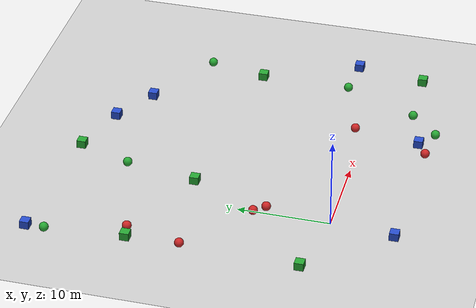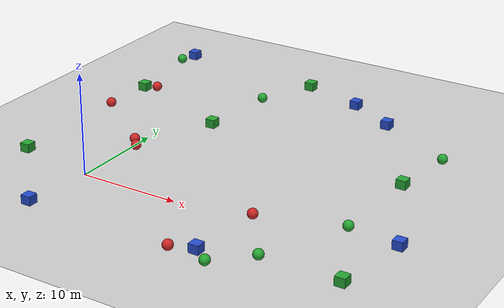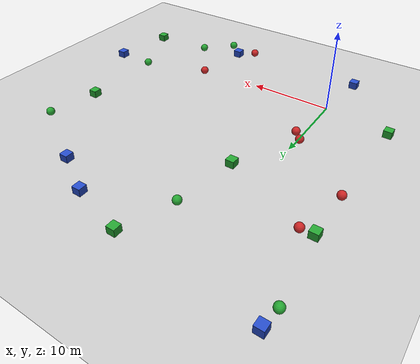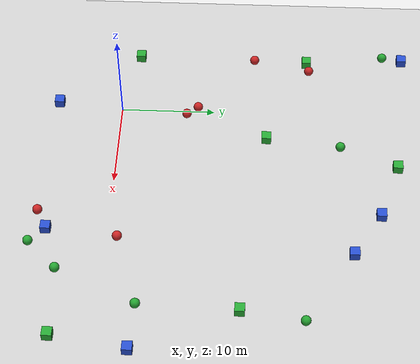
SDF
<sdf version="1.6">
 <world name="default">
  <light name="sun" type="directional">
   <pose>0 0 10 0 -0 0</pose>
   <diffuse>0.8 0.8 0.8 1</diffuse>
   <specular>0.1 0.1 0.1 1</specular>
   <attenuation>
    <range>1000</range>
    <constant>0.9</constant>
    <linear>0.01</linear>
    <quadratic>0.001</quadratic>
   </attenuation>
   <direction>-0.5 0.5 -1</direction>
  </light>
  <model name="ground_plane">
   <static>1</static>
   <link name="link">
    <collision name="collision">
     <geometry><plane><normal>0 0 1</normal><size>100 100</size></plane></geometry>
     <surface><friction><ode><mu>100</mu><mu2>50</mu2></ode></friction></surface>
    </collision>
    <visual name="visual">
     <cast_shadows>0</cast_shadows>
     <geometry><plane><normal>0 0 1</normal><size>100 100</size></plane></geometry>
     <material>
      <script><uri>file://media/materials/scripts/gazebo.material</uri><name>Gazebo/Grey</name></script>
     </material>
    </visual>
   </link>
  </model>
  <model name="unit_sphere_red_6">
   <pose>0.679006816392 7.06376724941 0.5 0 -0 0</pose>
   <link name="link">
    <inertial>
     <mass>1</mass>
     <inertia><ixx>0.1</ixx><ixy>0</ixy><ixz>0</ixz><iyy>0.1</iyy><iyz>0</iyz><izz>0.1</izz></inertia>
    </inertial>
    <collision name="collision"><geometry><sphere><radius>0.5</radius></sphere></geometry></collision>
    <visual name="visual">
     <geometry><sphere><radius>0.5</radius></sphere></geometry>
     <material>
      <script><name>Gazebo/Red</name><uri>file://media/materials/scripts/gazebo.material</uri></script>
     </material>
    </visual>
   </link>
  </model>
  <model name="unit_sphere_red_5">
   <pose>-0.342703010557 8.2347282803 0.5 0 -0 0</pose>
   <link name="link">
    <inertial>
     <mass>1</mass>
     <inertia><ixx>0.1</ixx><ixy>0</ixy><ixz>0</ixz><iyy>0.1</iyy><iyz>0</iyz><izz>0.1</izz></inertia>
    </inertial>
    <collision name="collision"><geometry><sphere><radius>0.5</radius></sphere></geometry></collision>
    <visual name="visual">
     <geometry><sphere><radius>0.5</radius></sphere></geometry>
     <material>
      <script><name>Gazebo/Red</name><uri>file://media/materials/scripts/gazebo.material</uri></script>
     </material>
    </visual>
   </link>
  </model>
  <model name="unit_sphere_red_4">
   <pose>17.5584294478 1.05749372229 0.5 0 -0 0</pose>
   <link name="link">
    <inertial>
     <mass>1</mass>
     <inertia><ixx>0.1</ixx><ixy>0</ixy><ixz>0</ixz><iyy>0.1</iyy><iyz>0</iyz><izz>0.1</izz></inertia>
    </inertial>
    <collision name="collision"><geometry><sphere><radius>0.5</radius></sphere></geometry></collision>
    <visual name="visual">
     <geometry><sphere><radius>0.5</radius></sphere></geometry>
     <material>
      <script><name>Gazebo/Red</name><uri>file://media/materials/scripts/gazebo.material</uri></script>
     </material>
    </visual>
   </link>
  </model>
  <model name="unit_sphere_red_3">
   <pose>14.5315029109 -7.34293304313 0.5 0 -0 0</pose>
   <link name="link">
    <inertial>
     <mass>1</mass>
     <inertia><ixx>0.1</ixx><ixy>0</ixy><ixz>0</ixz><iyy>0.1</iyy><iyz>0</iyz><izz>0.1</izz></inertia>
    </inertial>
    <collision name="collision"><geometry><sphere><radius>0.5</radius></sphere></geometry></collision>
    <visual name="visual">
     <geometry><sphere><radius>0.5</radius></sphere></geometry>
     <material>
      <script><name>Gazebo/Red</name><uri>file://media/materials/scripts/gazebo.material</uri></script>
     </material>
    </visual>
   </link>
  </model>
  <model name="unit_sphere_red_2">
   <pose>-6.26913152686 20.267223778 0.5 0 -0 0</pose>
   <link name="link">
    <inertial>
     <mass>1</mass>
     <inertia><ixx>0.1</ixx><ixy>0</ixy><ixz>0</ixz><iyy>0.1</iyy><iyz>0</iyz><izz>0.1</izz></inertia>
    </inertial>
    <collision name="collision"><geometry><sphere><radius>0.5</radius></sphere></geometry></collision>
    <visual name="visual">
     <geometry><sphere><radius>0.5</radius></sphere></geometry>
     <material>
      <script><name>Gazebo/Red</name><uri>file://media/materials/scripts/gazebo.material</uri></script>
     </material>
    </visual>
   </link>
  </model>
  <model name="unit_sphere_red_1">
   <pose>-7.76381281986 14.1980632517 0.5 0 -0 0</pose>
   <link name="link">
    <inertial>
     <mass>1</mass>
     <inertia><ixx>0.1</ixx><ixy>0</ixy><ixz>0</ixz><iyy>0.1</iyy><iyz>0</iyz><izz>0.1</izz></inertia>
    </inertial>
    <collision name="collision"><geometry><sphere><radius>0.5</radius></sphere></geometry></collision>
    <visual name="visual">
     <geometry><sphere><radius>0.5</radius></sphere></geometry>
     <material>
      <script><name>Gazebo/Red</name><uri>file://media/materials/scripts/gazebo.material</uri></script>
     </material>
    </visual>
   </link>
  </model>
  <model name="unit_box_green_6">
   <pose>7.32627079928 29.5790009614 0.329741 0 -0 0</pose>
   <link name="link">
    <inertial>
     <mass>1</mass>
     <inertia>
      <ixx>0.166667</ixx>
      <ixy>0</ixy>
      <ixz>0</ixz>
      <iyy>0.166667</iyy>
      <iyz>0</iyz>
      <izz>0.166667</izz>
     </inertia>
    </inertial>
    <collision name="collision"><geometry><box><size>1 1 0.999999</size></box></geometry></collision>
    <visual name="visual">
     <geometry><box><size>1 1 0.999999</size></box></geometry>
     <material>
      <script><name>Gazebo/Green</name><uri>file://media/materials/scripts/gazebo.material</uri></script>
     </material>
    </visual>
   </link>
  </model>
  <model name="unit_box_green_5">
   <pose>3.76036680904 15.7261155007 0.329741 0 -0 0</pose>
   <link name="link">
    <inertial>
     <mass>1</mass>
     <inertia>
      <ixx>0.166667</ixx>
      <ixy>0</ixy>
      <ixz>0</ixz>
      <iyy>0.166667</iyy>
      <iyz>0</iyz>
      <izz>0.166667</izz>
     </inertia>
    </inertial>
    <collision name="collision"><geometry><box><size>1 1 0.999999</size></box></geometry></collision>
    <visual name="visual">
     <geometry><box><size>1 1 0.999999</size></box></geometry>
     <material>
      <script><name>Gazebo/Green</name><uri>file://media/materials/scripts/gazebo.material</uri></script>
     </material>
    </visual>
   </link>
  </model>
  <model name="unit_box_green_4">
   <pose>25.8041870947 13.6004324751 0.329741 0 -0 0</pose>
   <link name="link">
    <inertial>
     <mass>1</mass>
     <inertia>
      <ixx>0.166667</ixx>
      <ixy>0</ixy>
      <ixz>0</ixz>
      <iyy>0.166667</iyy>
      <iyz>0</iyz>
      <izz>0.166667</izz>
     </inertia>
    </inertial>
    <collision name="collision"><geometry><box><size>1 1 0.999999</size></box></geometry></collision>
    <visual name="visual">
     <geometry><box><size>1 1 0.999999</size></box></geometry>
     <material>
      <script><name>Gazebo/Green</name><uri>file://media/materials/scripts/gazebo.material</uri></script>
     </material>
    </visual>
   </link>
  </model>
  <model name="unit_box_green_3">
   <pose>-8.06863257433 1.39302343865 0.329741 0 -0 0</pose>
   <link name="link">
    <inertial>
     <mass>1</mass>
     <inertia>
      <ixx>0.166667</ixx>
      <ixy>0</ixy>
      <ixz>0</ixz>
      <iyy>0.166667</iyy>
      <iyz>0</iyz>
      <izz>0.166667</izz>
     </inertia>
    </inertial>
    <collision name="collision"><geometry><box><size>1 1 0.999999</size></box></geometry></collision>
    <visual name="visual">
     <geometry><box><size>1 1 0.999999</size></box></geometry>
     <material>
      <script><name>Gazebo/Green</name><uri>file://media/materials/scripts/gazebo.material</uri></script>
     </material>
    </visual>
   </link>
  </model>
  <model name="unit_box_green_2">
   <pose>29.2125670267 -4.4049276741 0.329741 0 -0 0</pose>
   <link name="link">
    <inertial>
     <mass>1</mass>
     <inertia>
      <ixx>0.166667</ixx>
      <ixy>0</ixy>
      <ixz>0</ixz>
      <iyy>0.166667</iyy>
      <iyz>0</iyz>
      <izz>0.166667</izz>
     </inertia>
    </inertial>
    <collision name="collision"><geometry><box><size>1 1 0.999999</size></box></geometry></collision>
    <visual name="visual">
     <geometry><box><size>1 1 0.999999</size></box></geometry>
     <material>
      <script><name>Gazebo/Green</name><uri>file://media/materials/scripts/gazebo.material</uri></script>
     </material>
    </visual>
   </link>
  </model>
  <model name="unit_box_green_1">
   <pose>-7.70741868098 20.0073146435 0.329741 0 -0 0</pose>
   <link name="link">
    <inertial>
     <mass>1</mass>
     <inertia>
      <ixx>0.166667</ixx>
      <ixy>0</ixy>
      <ixz>0</ixz>
      <iyy>0.166667</iyy>
      <iyz>0</iyz>
      <izz>0.166667</izz>
     </inertia>
    </inertial>
    <collision name="collision"><geometry><box><size>1 1 0.999999</size></box></geometry></collision>
    <visual name="visual">
     <geometry><box><size>1 1 0.999999</size></box></geometry>
     <material>
      <script><name>Gazebo/Green</name><uri>file://media/materials/scripts/gazebo.material</uri></script>
     </material>
    </visual>
   </link>
  </model>
  <model name="unit_sphere_green_6">
   <pose>18.4736675206 -7.78405766692 0.5 0 -0 0</pose>
   <link name="link">
    <inertial>
     <mass>1</mass>
     <inertia><ixx>0.1</ixx><ixy>0</ixy><ixz>0</ixz><iyy>0.1</iyy><iyz>0</iyz><izz>0.1</izz></inertia>
    </inertial>
    <collision name="collision"><geometry><sphere><radius>0.5</radius></sphere></geometry></collision>
    <visual name="visual">
     <geometry><sphere><radius>0.5</radius></sphere></geometry>
     <material>
      <script><name>Gazebo/Green</name><uri>file://media/materials/scripts/gazebo.material</uri></script>
     </material>
    </visual>
   </link>
  </model>
  <model name="unit_sphere_green_5">
   <pose>26.8875178921 19.9287647355 0.5 0 -0 0</pose>
   <link name="link">
    <inertial>
     <mass>1</mass>
     <inertia><ixx>0.1</ixx><ixy>0</ixy><ixz>0</ixz><iyy>0.1</iyy><iyz>0</iyz><izz>0.1</izz></inertia>
    </inertial>
    <collision name="collision"><geometry><sphere><radius>0.5</radius></sphere></geometry></collision>
    <visual name="visual">
     <geometry><sphere><radius>0.5</radius></sphere></geometry>
     <material>
      <script><name>Gazebo/Green</name><uri>file://media/materials/scripts/gazebo.material</uri></script>
     </material>
    </visual>
   </link>
  </model>
  <model name="unit_sphere_green_4">
   <pose>21.6562242108 -4.68619490465 0.5 0 -0 0</pose>
   <link name="link">
    <inertial>
     <mass>1</mass>
     <inertia><ixx>0.1</ixx><ixy>0</ixy><ixz>0</ixz><iyy>0.1</iyy><iyz>0</iyz><izz>0.1</izz></inertia>
    </inertial>
    <collision name="collision"><geometry><sphere><radius>0.5</radius></sphere></geometry></collision>
    <visual name="visual">
     <geometry><sphere><radius>0.5</radius></sphere></geometry>
     <material>
      <script><name>Gazebo/Green</name><uri>file://media/materials/scripts/gazebo.material</uri></script>
     </material>
    </visual>
   </link>
  </model>
  <model name="unit_sphere_green_3">
   <pose>25.5502633296 3.55259653842 0.5 0 -0 0</pose>
   <link name="link">
    <inertial>
     <mass>1</mass>
     <inertia><ixx>0.1</ixx><ixy>0</ixy><ixz>0</ixz><iyy>0.1</iyy><iyz>0</iyz><izz>0.1</izz></inertia>
    </inertial>
    <collision name="collision"><geometry><sphere><radius>0.5</radius></sphere></geometry></collision>
    <visual name="visual">
     <geometry><sphere><radius>0.5</radius></sphere></geometry>
     <material>
      <script><name>Gazebo/Green</name><uri>file://media/materials/scripts/gazebo.material</uri></script>
     </material>
    </visual>
   </link>
  </model>
  <model name="unit_sphere_green_2">
   <pose>4.87064513108 23.5983513682 0.5 0 -0 0</pose>
   <link name="link">
    <inertial>
     <mass>1</mass>
     <inertia><ixx>0.1</ixx><ixy>0</ixy><ixz>0</ixz><iyy>0.1</iyy><iyz>0</iyz><izz>0.1</izz></inertia>
    </inertial>
    <collision name="collision"><geometry><sphere><radius>0.5</radius></sphere></geometry></collision>
    <visual name="visual">
     <geometry><sphere><radius>0.5</radius></sphere></geometry>
     <material>
      <script><name>Gazebo/Green</name><uri>file://media/materials/scripts/gazebo.material</uri></script>
     </material>
    </visual>
   </link>
  </model>
  <model name="unit_sphere_green_1">
   <pose>-8.68552356223 28.5252114205 0.5 0 -0 0</pose>
   <link name="link">
    <inertial>
     <mass>1</mass>
     <inertia><ixx>0.1</ixx><ixy>0</ixy><ixz>0</ixz><iyy>0.1</iyy><iyz>0</iyz><izz>0.1</izz></inertia>
    </inertial>
    <collision name="collision"><geometry><sphere><radius>0.5</radius></sphere></geometry></collision>
    <visual name="visual">
     <geometry><sphere><radius>0.5</radius></sphere></geometry>
     <material>
      <script><name>Gazebo/Green</name><uri>file://media/materials/scripts/gazebo.material</uri></script>
     </material>
    </visual>
   </link>
  </model>
  <model name="unit_box_blue_6">
   <pose>30.4919656445 3.25108026558 0.329741 0 -0 0</pose>
   <link name="link">
    <inertial>
     <mass>1</mass>
     <inertia>
      <ixx>0.166667</ixx>
      <ixy>0</ixy>
      <ixz>0</ixz>
      <iyy>0.166667</iyy>
      <iyz>0</iyz>
      <izz>0.166667</izz>
     </inertia>
    </inertial>
    <collision name="collision"><geometry><box><size>1 1 0.999999</size></box></geometry></collision>
    <visual name="visual">
     <geometry><box><size>1 1 0.999999</size></box></geometry>
     <material>
      <script><name>Gazebo/Blue</name><uri>file://media/materials/scripts/gazebo.material</uri></script>
     </material>
    </visual>
   </link>
  </model>
  <model name="unit_box_blue_5">
   <pose>-0.732872559211 -6.94813121058 0.329741 0 -0 0</pose>
   <link name="link">
    <inertial>
     <mass>1</mass>
     <inertia>
      <ixx>0.166667</ixx>
      <ixy>0</ixy>
      <ixz>0</ixz>
      <iyy>0.166667</iyy>
      <iyz>0</iyz>
      <izz>0.166667</izz>
     </inertia>
    </inertial>
    <collision name="collision"><geometry><box><size>1 1 0.999999</size></box></geometry></collision>
    <visual name="visual">
     <geometry><box><size>1 1 0.999999</size></box></geometry>
     <material>
      <script><name>Gazebo/Blue</name><uri>file://media/materials/scripts/gazebo.material</uri></script>
     </material>
    </visual>
   </link>
  </model>
  <model name="unit_box_blue_4">
   <pose>16.6291056478 -6.25426737969 0.329741 0 -0 0</pose>
   <link name="link">
    <inertial>
     <mass>1</mass>
     <inertia>
      <ixx>0.166667</ixx>
      <ixy>0</ixy>
      <ixz>0</ixz>
      <iyy>0.166667</iyy>
      <iyz>0</iyz>
      <izz>0.166667</izz>
     </inertia>
    </inertial>
    <collision name="collision"><geometry><box><size>1 1 0.999999</size></box></geometry></collision>
    <visual name="visual">
     <geometry><box><size>1 1 0.999999</size></box></geometry>
     <material>
      <script><name>Gazebo/Blue</name><uri>file://media/materials/scripts/gazebo.material</uri></script>
     </material>
    </visual>
   </link>
  </model>
  <model name="unit_box_blue_3">
   <pose>13.7665725033 27.6239941983 0.329741 0 -0 0</pose>
   <link name="link">
    <inertial>
     <mass>1</mass>
     <inertia>
      <ixx>0.166667</ixx>
      <ixy>0</ixy>
      <ixz>0</ixz>
      <iyy>0.166667</iyy>
      <iyz>0</iyz>
      <izz>0.166667</izz>
     </inertia>
    </inertial>
    <collision name="collision"><geometry><box><size>1 1 0.999999</size></box></geometry></collision>
    <visual name="visual">
     <geometry><box><size>1 1 0.999999</size></box></geometry>
     <material>
      <script><name>Gazebo/Blue</name><uri>file://media/materials/scripts/gazebo.material</uri></script>
     </material>
    </visual>
   </link>
  </model>
  <model name="unit_box_blue_2">
   <pose>-8.38871420295 30.6620621582 0.329741 0 -0 0</pose>
   <link name="link">
    <inertial>
     <mass>1</mass>
     <inertia>
      <ixx>0.166667</ixx>
      <ixy>0</ixy>
      <ixz>0</ixz>
      <iyy>0.166667</iyy>
      <iyz>0</iyz>
      <izz>0.166667</izz>
     </inertia>
    </inertial>
    <collision name="collision"><geometry><box><size>1 1 0.999999</size></box></geometry></collision>
    <visual name="visual">
     <geometry><box><size>1 1 0.999999</size></box></geometry>
     <material>
      <script><name>Gazebo/Blue</name><uri>file://media/materials/scripts/gazebo.material</uri></script>
     </material>
    </visual>
   </link>
  </model>
  <model name="unit_box_blue_1">
   <pose>18.7230735967 24.7665334225 0.329741 0 -0 0</pose>
   <link name="link">
    <inertial>
     <mass>1</mass>
     <inertia>
      <ixx>0.166667</ixx>
      <ixy>0</ixy>
      <ixz>0</ixz>
      <iyy>0.166667</iyy>
      <iyz>0</iyz>
      <izz>0.166667</izz>
     </inertia>
    </inertial>
    <collision name="collision"><geometry><box><size>1 1 0.999999</size></box></geometry></collision>
    <visual name="visual">
     <geometry><box><size>1 1 0.999999</size></box></geometry>
     <material>
      <script><name>Gazebo/Blue</name><uri>file://media/materials/scripts/gazebo.material</uri></script>
     </material>
    </visual>
   </link>
  </model>
  <gravity>0 0 -9.8</gravity>
  <magnetic_field>6e-06 2.3e-05 -4.2e-05</magnetic_field>
  <atmosphere type="adiabatic"/>
  <physics default="0" name="default_physics" type="ode">
   <max_step_size>0.001</max_step_size>
   <real_time_factor>1</real_time_factor>
   <real_time_update_rate>1000</real_time_update_rate>
  </physics>
  <scene><ambient>0.4 0.4 0.4 1</ambient><background>0.7 0.7 0.7 1</background><shadows>1</shadows></scene>
  <spherical_coordinates>
   <surface_model>EARTH_WGS84</surface_model>
   <latitude_deg>0</latitude_deg>
   <longitude_deg>0</longitude_deg>
   <elevation>0</elevation>
   <heading_deg>0</heading_deg>
  </spherical_coordinates>
 </world>
</sdf>
